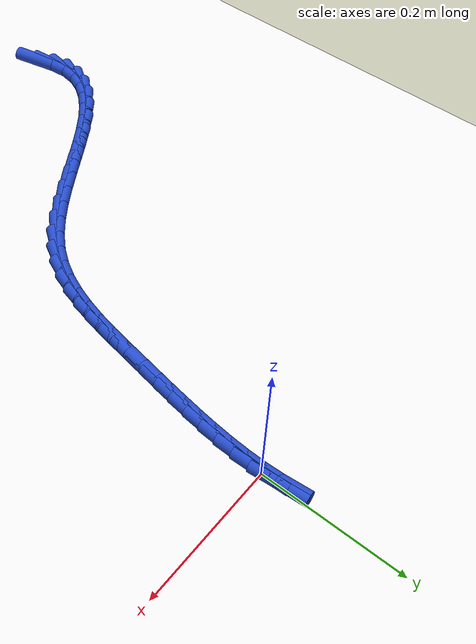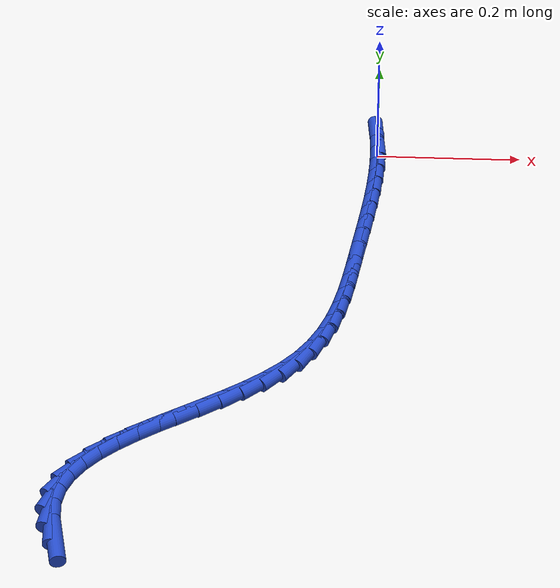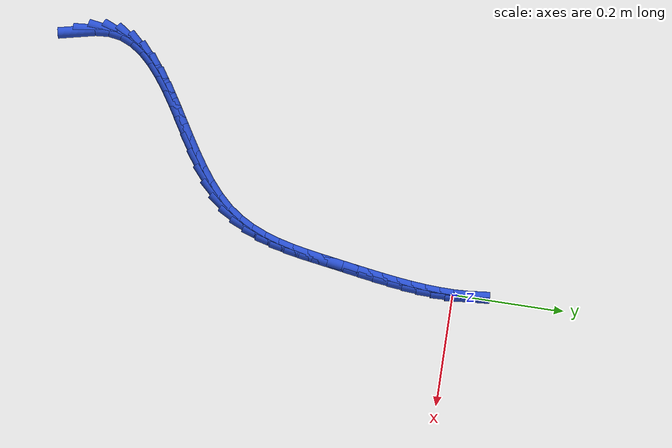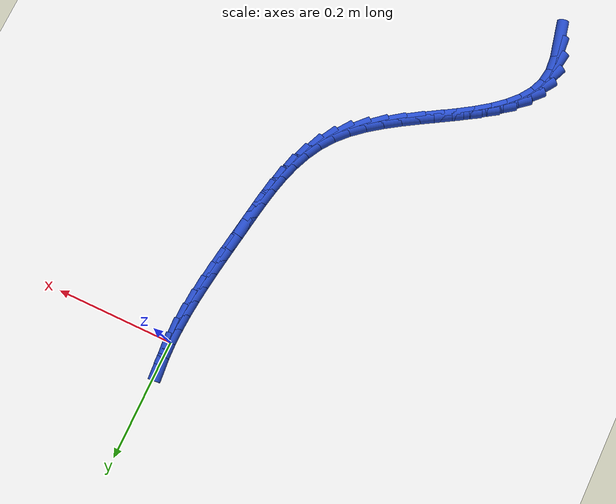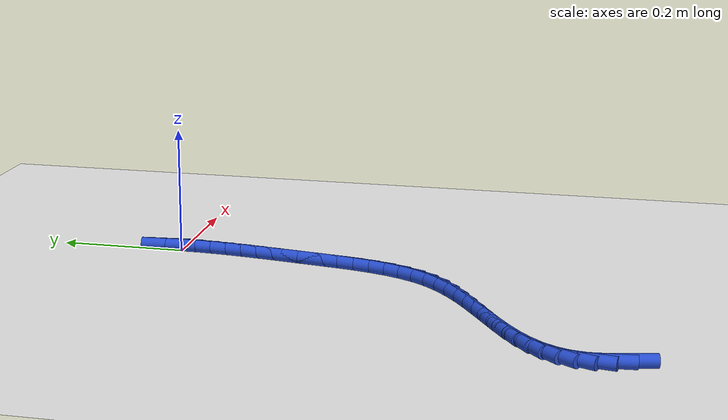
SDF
<sdf version="1.6">
 <world name="default">
  <model name="ground_plane">
   <static>1</static>
   <link name="link">
    <collision name="collision">
     <geometry><plane><normal>0 0 1</normal><size>100 100</size></plane></geometry>
     <surface><friction><ode><mu>100</mu><mu2>50</mu2></ode></friction></surface>
    </collision>
    <visual name="visual">
     <cast_shadows>0</cast_shadows>
     <geometry><plane><normal>0 0 1</normal><size>100 100</size></plane></geometry>
     <material>
      <script><uri>file://media/materials/scripts/gazebo.material</uri><name>Gazebo/WhiteGlow</name></script>
     </material>
    </visual>
   </link>
  </model>
  <model name="line">
   <link name="link_0">
    <pose>1.3010426069826053e-17 4.85722573273506e-17 0.01 0 1.57 -1.53374273078391</pose>
    <collision name="collision">
     <geometry><cylinder><radius>0.01</radius><length>0.08</length></cylinder></geometry>
    </collision>
    <visual name="visual">
     <material>
      <script><name>Gazebo/Blue</name><uri>file://media/materials/scripts/gazebo.material</uri></script>
     </material>
     <geometry><cylinder><radius>0.01</radius><length>0.08</length></cylinder></geometry>
    </visual>
   </link>
   <link name="link_1">
    <pose>-0.0009505120971851558 0.02564061661403741 0.01 0 1.57 -1.4929161313203863</pose>
    <collision name="collision">
     <geometry><cylinder><radius>0.01</radius><length>0.08</length></cylinder></geometry>
    </collision>
    <visual name="visual">
     <material>
      <script><name>Gazebo/Blue</name><uri>file://media/materials/scripts/gazebo.material</uri></script>
     </material>
     <geometry><cylinder><radius>0.01</radius><length>0.08</length></cylinder></geometry>
    </visual>
   </link>
   <link name="link_258">
    <pose>-0.36629269942364784 -0.7272956495466618 0.01 0 1.57 -1.3502365493798796</pose>
    <collision name="collision">
     <geometry><cylinder><radius>0.01</radius><length>0.08</length></cylinder></geometry>
    </collision>
    <visual name="visual">
     <material>
      <script><name>Gazebo/Blue</name><uri>file://media/materials/scripts/gazebo.material</uri></script>
     </material>
     <geometry><cylinder><radius>0.01</radius><length>0.08</length></cylinder></geometry>
    </visual>
   </link>
   <link name="link_259">
    <pose>-0.37228837879748033 -0.7005539675398642 0.01 0 1.57 -1.4924325028889582</pose>
    <collision name="collision">
     <geometry><cylinder><radius>0.01</radius><length>0.08</length></cylinder></geometry>
    </collision>
    <visual name="visual">
     <material>
      <script><name>Gazebo/Blue</name><uri>file://media/materials/scripts/gazebo.material</uri></script>
     </material>
     <geometry><cylinder><radius>0.01</radius><length>0.08</length></cylinder></geometry>
    </visual>
   </link>
   <link name="link_260">
    <pose>-0.3742795130203732 -0.6751971552217959 0.01 0 1.57 1.4106596063396069</pose>
    <collision name="collision">
     <geometry><cylinder><radius>0.01</radius><length>0.08</length></cylinder></geometry>
    </collision>
    <visual name="visual">
     <material>
      <script><name>Gazebo/Blue</name><uri>file://media/materials/scripts/gazebo.material</uri></script>
     </material>
     <geometry><cylinder><radius>0.01</radius><length>0.08</length></cylinder></geometry>
    </visual>
   </link>
   <link name="link_261">
    <pose>-0.37051941115460124 -0.6519176368749281 0.01 0 1.57 1.1741411278795058</pose>
    <collision name="collision">
     <geometry><cylinder><radius>0.01</radius><length>0.08</length></cylinder></geometry>
    </collision>
    <visual name="visual">
     <material>
      <script><name>Gazebo/Blue</name><uri>file://media/materials/scripts/gazebo.material</uri></script>
     </material>
     <geometry><cylinder><radius>0.01</radius><length>0.08</length></cylinder></geometry>
    </visual>
   </link>
   <link name="link_262">
    <pose>-0.3615464395444777 -0.630495071532017 0.01 0 1.57 0.9727793428100435</pose>
    <collision name="collision">
     <geometry><cylinder><radius>0.01</radius><length>0.08</length></cylinder></geometry>
    </collision>
    <visual name="visual">
     <material>
      <script><name>Gazebo/Blue</name><uri>file://media/materials/scripts/gazebo.material</uri></script>
     </material>
     <geometry><cylinder><radius>0.01</radius><length>0.08</length></cylinder></geometry>
    </visual>
   </link>
   <link name="link_263">
    <pose>-0.3480315765946421 -0.6106561463894837 0.01 0 1.57 0.8172081674298719</pose>
    <collision name="collision">
     <geometry><cylinder><radius>0.01</radius><length>0.08</length></cylinder></geometry>
    </collision>
    <visual name="visual">
     <material>
      <script><name>Gazebo/Blue</name><uri>file://media/materials/scripts/gazebo.material</uri></script>
     </material>
     <geometry><cylinder><radius>0.01</radius><length>0.08</length></cylinder></geometry>
    </visual>
   </link>
   <link name="link_264">
    <pose>-0.33064580070973393 -0.5921275486437506 0.01 0 1.57 0.7043171933961501</pose>
    <collision name="collision">
     <geometry><cylinder><radius>0.01</radius><length>0.08</length></cylinder></geometry>
    </collision>
    <visual name="visual">
     <material>
      <script><name>Gazebo/Blue</name><uri>file://media/materials/scripts/gazebo.material</uri></script>
     </material>
     <geometry><cylinder><radius>0.01</radius><length>0.08</length></cylinder></geometry>
    </visual>
   </link>
   <link name="link_265">
    <pose>-0.3100600902943934 -0.5746359654912392 0.01 0 1.57 0.6264497975938692</pose>
    <collision name="collision">
     <geometry><cylinder><radius>0.01</radius><length>0.08</length></cylinder></geometry>
    </collision>
    <visual name="visual">
     <material>
      <script><name>Gazebo/Blue</name><uri>file://media/materials/scripts/gazebo.material</uri></script>
     </material>
     <geometry><cylinder><radius>0.01</radius><length>0.08</length></cylinder></geometry>
    </visual>
   </link>
   <link name="link_266">
    <pose>-0.28694542375325854 -0.5579080841283702 0.01 0 1.57 0.5765236599233536</pose>
    <collision name="collision">
     <geometry><cylinder><radius>0.01</radius><length>0.08</length></cylinder></geometry>
    </collision>
    <visual name="visual">
     <material>
      <script><name>Gazebo/Blue</name><uri>file://media/materials/scripts/gazebo.material</uri></script>
     </material>
     <geometry><cylinder><radius>0.01</radius><length>0.08</length></cylinder></geometry>
    </visual>
   </link>
   <link name="link_267">
    <pose>-0.26197277949096964 -0.541670591751566 0.01 0 1.57 0.5494942543823021</pose>
    <collision name="collision">
     <geometry><cylinder><radius>0.01</radius><length>0.08</length></cylinder></geometry>
    </collision>
    <visual name="visual">
     <material>
      <script><name>Gazebo/Blue</name><uri>file://media/materials/scripts/gazebo.material</uri></script>
     </material>
     <geometry><cylinder><radius>0.01</radius><length>0.08</length></cylinder></geometry>
    </visual>
   </link>
   <link name="link_268">
    <pose>-0.23581313591216607 -0.525650175557248 0.01 0 1.57 0.5423812508373393</pose>
    <collision name="collision">
     <geometry><cylinder><radius>0.01</radius><length>0.08</length></cylinder></geometry>
    </collision>
    <visual name="visual">
     <material>
      <script><name>Gazebo/Blue</name><uri>file://media/materials/scripts/gazebo.material</uri></script>
     </material>
     <geometry><cylinder><radius>0.01</radius><length>0.08</length></cylinder></geometry>
    </visual>
   </link>
   <link name="link_269">
    <pose>-0.20913747142148736 -0.509573522741838 0.01 0 1.57 0.5539972662322074</pose>
    <collision name="collision">
     <geometry><cylinder><radius>0.01</radius><length>0.08</length></cylinder></geometry>
    </collision>
    <visual name="visual">
     <material>
      <script><name>Gazebo/Blue</name><uri>file://media/materials/scripts/gazebo.material</uri></script>
     </material>
     <geometry><cylinder><radius>0.01</radius><length>0.08</length></cylinder></geometry>
    </visual>
   </link>
   <link name="link_270">
    <pose>-0.18261676442357294 -0.4931673205017575 0.01 0 1.57 0.5847412214932064</pose>
    <collision name="collision">
     <geometry><cylinder><radius>0.01</radius><length>0.08</length></cylinder></geometry>
    </collision>
    <visual name="visual">
     <material>
      <script><name>Gazebo/Blue</name><uri>file://media/materials/scripts/gazebo.material</uri></script>
     </material>
     <geometry><cylinder><radius>0.01</radius><length>0.08</length></cylinder></geometry>
    </visual>
   </link>
   <link name="link_271">
    <pose>-0.15692199332306242 -0.4761582560334283 0.01 0 1.57 0.6365046635323908</pose>
    <collision name="collision">
     <geometry><cylinder><radius>0.01</radius><length>0.08</length></cylinder></geometry>
    </collision>
    <visual name="visual">
     <material>
      <script><name>Gazebo/Blue</name><uri>file://media/materials/scripts/gazebo.material</uri></script>
     </material>
     <geometry><cylinder><radius>0.01</radius><length>0.08</length></cylinder></geometry>
    </visual>
   </link>
   <link name="link_272">
    <pose>-0.13272413652459522 -0.45827301653327196 0.01 0 1.57 0.7125876338471134</pose>
    <collision name="collision">
     <geometry><cylinder><radius>0.01</radius><length>0.08</length></cylinder></geometry>
    </collision>
    <visual name="visual">
     <material>
      <script><name>Gazebo/Blue</name><uri>file://media/materials/scripts/gazebo.material</uri></script>
     </material>
     <geometry><cylinder><radius>0.01</radius><length>0.08</length></cylinder></geometry>
    </visual>
   </link>
   <link name="link_273">
    <pose>-0.11069417243281082 -0.43923828919771013 0.01 0 1.57 0.8173277919483765</pose>
    <collision name="collision">
     <geometry><cylinder><radius>0.01</radius><length>0.08</length></cylinder></geometry>
    </collision>
    <visual name="visual">
     <material>
      <script><name>Gazebo/Blue</name><uri>file://media/materials/scripts/gazebo.material</uri></script>
     </material>
     <geometry><cylinder><radius>0.01</radius><length>0.08</length></cylinder></geometry>
    </visual>
   </link>
   <link name="link_274">
    <pose>-0.09150305284799995 -0.41878077300648825 0.01 0 1.57 0.9462564755753604</pose>
    <collision name="collision">
     <geometry><cylinder><radius>0.01</radius><length>0.08</length></cylinder></geometry>
    </collision>
    <visual name="visual">
     <material>
      <script><name>Gazebo/Blue</name><uri>file://media/materials/scripts/gazebo.material</uri></script>
     </material>
     <geometry><cylinder><radius>0.01</radius><length>0.08</length></cylinder></geometry>
    </visual>
   </link>
   <link name="link_275">
    <pose>-0.0756044354746403 -0.39672340859976996 0.01 0 1.57 1.0689944629603754</pose>
    <collision name="collision">
     <geometry><cylinder><radius>0.01</radius><length>0.08</length></cylinder></geometry>
    </collision>
    <visual name="visual">
     <material>
      <script><name>Gazebo/Blue</name><uri>file://media/materials/scripts/gazebo.material</uri></script>
     </material>
     <geometry><cylinder><radius>0.01</radius><length>0.08</length></cylinder></geometry>
    </visual>
   </link>
   <link name="link_276">
    <pose>-0.0627085484487084 -0.37321840877676504 0.01 0 1.57 1.1747106306108464</pose>
    <collision name="collision">
     <geometry><cylinder><radius>0.01</radius><length>0.08</length></cylinder></geometry>
    </collision>
    <visual name="visual">
     <material>
      <script><name>Gazebo/Blue</name><uri>file://media/materials/scripts/gazebo.material</uri></script>
     </material>
     <geometry><cylinder><radius>0.01</radius><length>0.08</length></cylinder></geometry>
    </visual>
   </link>
   <link name="link_277">
    <pose>-0.052366762197081314 -0.348488345955231 0.01 0 1.57 1.2610264776399003</pose>
    <collision name="collision">
     <geometry><cylinder><radius>0.01</radius><length>0.08</length></cylinder></geometry>
    </collision>
    <visual name="visual">
     <material>
      <script><name>Gazebo/Blue</name><uri>file://media/materials/scripts/gazebo.material</uri></script>
     </material>
     <geometry><cylinder><radius>0.01</radius><length>0.08</length></cylinder></geometry>
    </visual>
   </link>
   <link name="link_278">
    <pose>-0.044130447146635964 -0.32275579255292486 0.01 0 1.57 1.3275452565687054</pose>
    <collision name="collision">
     <geometry><cylinder><radius>0.01</radius><length>0.08</length></cylinder></geometry>
    </collision>
    <visual name="visual">
     <material>
      <script><name>Gazebo/Blue</name><uri>file://media/materials/scripts/gazebo.material</uri></script>
     </material>
     <geometry><cylinder><radius>0.01</radius><length>0.08</length></cylinder></geometry>
    </visual>
   </link>
   <link name="link_279">
    <pose>-0.037550973724249315 -0.2962433209876038 0.01 0 1.57 1.374918033727243</pose>
    <collision name="collision">
     <geometry><cylinder><radius>0.01</radius><length>0.08</length></cylinder></geometry>
    </collision>
    <visual name="visual">
     <material>
      <script><name>Gazebo/Blue</name><uri>file://media/materials/scripts/gazebo.material</uri></script>
     </material>
     <geometry><cylinder><radius>0.01</radius><length>0.08</length></cylinder></geometry>
    </visual>
   </link>
   <link name="link_280">
    <pose>-0.03217971235679851 -0.269173503677026 0.01 0 1.57 1.404077111766518</pose>
    <collision name="collision">
     <geometry><cylinder><radius>0.01</radius><length>0.08</length></cylinder></geometry>
    </collision>
    <visual name="visual">
     <material>
      <script><name>Gazebo/Blue</name><uri>file://media/materials/scripts/gazebo.material</uri></script>
     </material>
     <geometry><cylinder><radius>0.01</radius><length>0.08</length></cylinder></geometry>
    </visual>
   </link>
   <link name="link_281">
    <pose>-0.027568033471160186 -0.24176891303894685 0.01 0 1.57 1.415756115326242</pose>
    <collision name="collision">
     <geometry><cylinder><radius>0.01</radius><length>0.08</length></cylinder></geometry>
    </collision>
    <visual name="visual">
     <material>
      <script><name>Gazebo/Blue</name><uri>file://media/materials/scripts/gazebo.material</uri></script>
     </material>
     <geometry><cylinder><radius>0.01</radius><length>0.08</length></cylinder></geometry>
    </visual>
   </link>
   <link name="link_282">
    <pose>-0.023267309347954856 -0.21425212091248186 0.01 0 1.57 1.4144378615267963</pose>
    <collision name="collision">
     <geometry><cylinder><radius>0.01</radius><length>0.08</length></cylinder></geometry>
    </collision>
    <visual name="visual">
     <material>
      <script><name>Gazebo/Blue</name><uri>file://media/materials/scripts/gazebo.material</uri></script>
     </material>
     <geometry><cylinder><radius>0.01</radius><length>0.08</length></cylinder></geometry>
    </visual>
   </link>
   <link name="link_283">
    <pose>-0.01894128688356565 -0.18681062161089457 0.01 0 1.57 1.41562148264178</pose>
    <collision name="collision">
     <geometry><cylinder><radius>0.01</radius><length>0.08</length></cylinder></geometry>
    </collision>
    <visual name="visual">
     <material>
      <script><name>Gazebo/Blue</name><uri>file://media/materials/scripts/gazebo.material</uri></script>
     </material>
     <geometry><cylinder><radius>0.01</radius><length>0.08</length></cylinder></geometry>
    </visual>
   </link>
   <link name="link_284">
    <pose>-0.014669358204957192 -0.1595021665671574 0.01 0 1.57 1.4229794194434906</pose>
    <collision name="collision">
     <geometry><cylinder><radius>0.01</radius><length>0.08</length></cylinder></geometry>
    </collision>
    <visual name="visual">
     <material>
      <script><name>Gazebo/Blue</name><uri>file://media/materials/scripts/gazebo.material</uri></script>
     </material>
     <geometry><cylinder><radius>0.01</radius><length>0.08</length></cylinder></geometry>
    </visual>
   </link>
   <link name="link_285">
    <pose>-0.010626991961509812 -0.1323545171077063 0.01 0 1.57 1.4366855943102583</pose>
    <collision name="collision">
     <geometry><cylinder><radius>0.01</radius><length>0.08</length></cylinder></geometry>
    </collision>
    <visual name="visual">
     <material>
      <script><name>Gazebo/Blue</name><uri>file://media/materials/scripts/gazebo.material</uri></script>
     </material>
     <geometry><cylinder><radius>0.01</radius><length>0.08</length></cylinder></geometry>
    </visual>
   </link>
   <link name="link_286">
    <pose>-0.006989656802603817 -0.10539543455897722 0.01 0 1.57 1.456985102005242</pose>
    <collision name="collision">
     <geometry><cylinder><radius>0.01</radius><length>0.08</length></cylinder></geometry>
    </collision>
    <visual name="visual">
     <material>
      <script><name>Gazebo/Blue</name><uri>file://media/materials/scripts/gazebo.material</uri></script>
     </material>
     <geometry><cylinder><radius>0.01</radius><length>0.08</length></cylinder></geometry>
    </visual>
   </link>
   <link name="link_287">
    <pose>-0.003932821377619527 -0.07865268024740611 0.01 0 1.57 1.484184011874988</pose>
    <collision name="collision">
     <geometry><cylinder><radius>0.01</radius><length>0.08</length></cylinder></geometry>
    </collision>
    <visual name="visual">
     <material>
      <script><name>Gazebo/Blue</name><uri>file://media/materials/scripts/gazebo.material</uri></script>
     </material>
     <geometry><cylinder><radius>0.01</radius><length>0.08</length></cylinder></geometry>
    </visual>
   </link>
   <link name="link_288">
    <pose>-0.0016319543359372447 -0.05215401549942885 0.01 0 1.57 1.5186288194084299</pose>
    <collision name="collision">
     <geometry><cylinder><radius>0.01</radius><length>0.08</length></cylinder></geometry>
    </collision>
    <visual name="visual">
     <material>
      <script><name>Gazebo/Blue</name><uri>file://media/materials/scripts/gazebo.material</uri></script>
     </material>
     <geometry><cylinder><radius>0.01</radius><length>0.08</length></cylinder></geometry>
    </visual>
   </link>
   <link name="link_289">
    <pose>-0.00026252432693729243 -0.025927201641481438 0.01 0 1.57 1.5606712327183805</pose>
    <collision name="collision">
     <geometry><cylinder><radius>0.01</radius><length>0.08</length></cylinder></geometry>
    </collision>
    <visual name="visual">
     <material>
      <script><name>Gazebo/Blue</name><uri>file://media/materials/scripts/gazebo.material</uri></script>
     </material>
     <geometry><cylinder><radius>0.01</radius><length>0.08</length></cylinder></geometry>
    </visual>
   </link>
   <link name="link_290">
    <pose>1.9081958235744878e-17 2.498001805406602e-16 0.01 0 1.57 -1.530979223871302</pose>
    <collision name="collision">
     <geometry><cylinder><radius>0.01</radius><length>0.08</length></cylinder></geometry>
    </collision>
    <visual name="visual">
     <material>
      <script><name>Gazebo/Blue</name><uri>file://media/materials/scripts/gazebo.material</uri></script>
     </material>
     <geometry><cylinder><radius>0.01</radius><length>0.08</length></cylinder></geometry>
    </visual>
   </link>
   <link name="link_291">
    <pose>-0.0010198500045055688 0.025599828098579427 0.01 0 1.57 -1.4729625808000204</pose>
    <collision name="collision">
     <geometry><cylinder><radius>0.01</radius><length>0.08</length></cylinder></geometry>
    </collision>
    <visual name="visual">
     <material>
      <script><name>Gazebo/Blue</name><uri>file://media/materials/scripts/gazebo.material</uri></script>
     </material>
     <geometry><cylinder><radius>0.01</radius><length>0.08</length></cylinder></geometry>
    </visual>
   </link>
  </model>
 </world>
</sdf>
